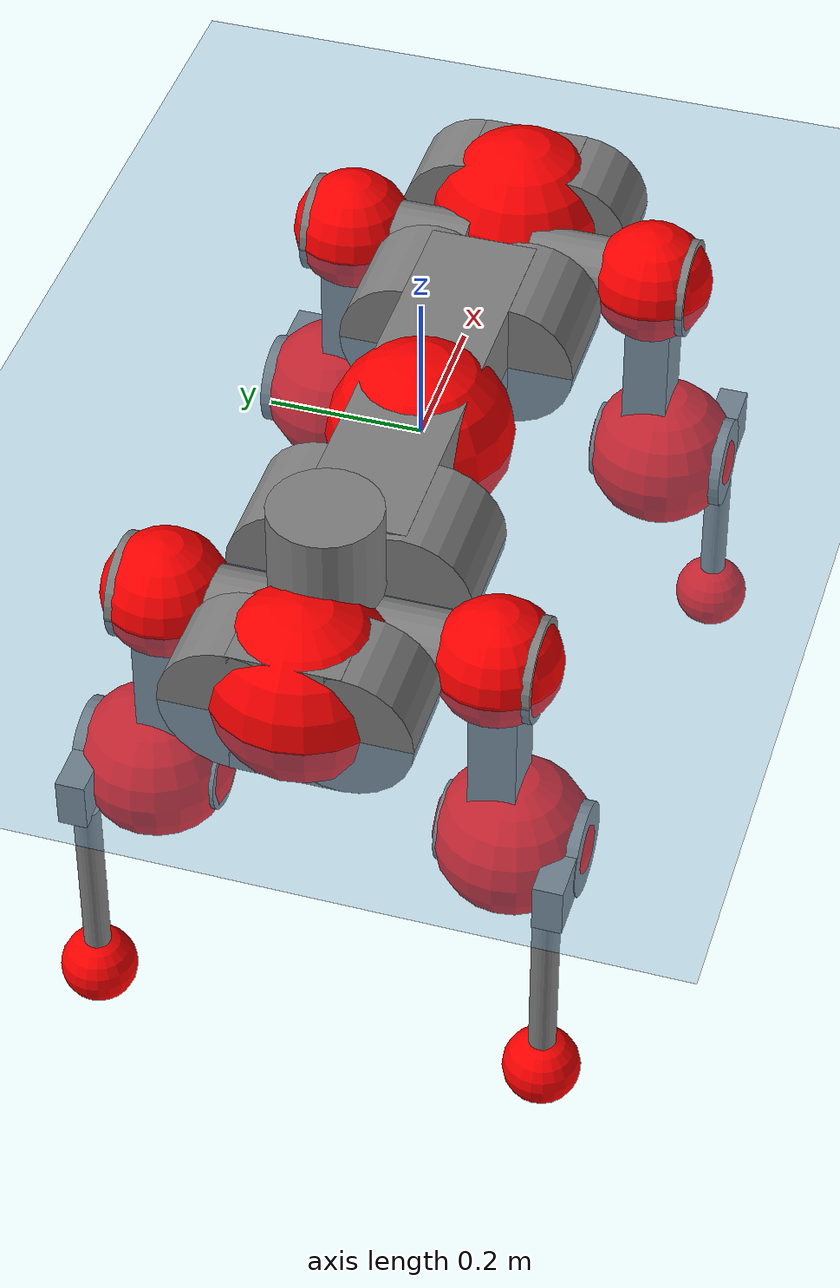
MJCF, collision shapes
<mujoco model="anymal_c">
  <compiler angle="radian" assetdir="assets" balanceinertia="true" inertiafromgeom="false"/>

  <option timestep="0.005" density="1.2" viscosity="2e-05"/>

  <size nkey="1"/>

  <visual>
    <quality shadowsize="8192"/>
    <map shadowclip="0.5"/>
  </visual>

  <default>
    <default class="/">
      <material specular="0" shininess="0.25"/>
      <geom contype="0" conaffinity="0" group="1" solref="-1000 -80"/>
      <site size="0.01 0.005 0.005" group="5"/>
      <general forcelimited="true" forcerange="-80 80" biastype="affine" gainprm="80" biasprm="0 -80 -2"/>
      <default class="anymal_c">
        <joint armature="0.01" damping="0.01" frictionloss="0.1"/>
        <default class="visual">
          <geom type="mesh" group="2"/>
          <default class="visual_zflip"/>
        </default>
        <default class="collision">
          <geom type="cylinder" group="3"/>
          <default class="foot">
            <geom size="0.03 0 0" type="sphere" condim="6" priority="1" friction="0.8 0.02 0.01" solimp="0.015 1 0.03"/>
          </default>
        </default>
      </default>
      <default class="reward_collision_sphere">
        <geom group="5" rgba="1 0 0 1"/>
      </default>
    </default>
  </default>

  <asset>
    <texture type="skybox" colorspace="auto" name="//unnamed_texture_0" builtin="gradient" rgb1="0.95 0.95 0.95" rgb2="0.95 0.95 0.95" width="100" height="600"/>
    <texture type="2d" colorspace="auto" name="texplane" builtin="checker" rgb1="0.345 0.575 0.748" rgb2="0.345 0.575 0.748" markrgb="1 1 1" width="512" height="512"/>
    <texture type="2d" colorspace="linear" name="base" file="base.png"/>
    <texture type="2d" colorspace="linear" name="top_shell" file="top_shell.png"/>
    <texture type="2d" colorspace="linear" name="bottom_shell" file="bottom_shell.png"/>
    <texture type="2d" colorspace="linear" name="remote" file="remote.png"/>
    <texture type="2d" colorspace="linear" name="hatch" file="hatch.png"/>
    <texture type="2d" colorspace="linear" name="handle" file="handle.png"/>
    <texture type="2d" colorspace="linear" name="face" file="face.png"/>
    <texture type="2d" colorspace="linear" name="battery" file="battery.png"/>
    <texture type="2d" colorspace="linear" name="lidar_cage" file="lidar_cage.png"/>
    <texture type="2d" colorspace="linear" name="depth_camera" file="depth_camera.png"/>
    <texture type="2d" colorspace="linear" name="wide_angle_camera" file="wide_angle_camera.png"/>
    <texture type="2d" colorspace="linear" name="lidar" file="lidar.png"/>
    <texture type="2d" colorspace="linear" name="drive" file="drive.png"/>
    <texture type="2d" colorspace="linear" name="hip_l" file="hip_l.png"/>
    <texture type="2d" colorspace="linear" name="shank_l" file="shank_l.png"/>
    <texture type="2d" colorspace="linear" name="foot" file="foot.png"/>
    <texture type="2d" colorspace="linear" name="thigh" file="thigh.png"/>
    <texture type="2d" colorspace="linear" name="shank_r" file="shank_r.png"/>
    <texture type="2d" colorspace="linear" name="hip_r" file="hip_r.png"/>
    <material name="MatPlane" class="/" texture="texplane" texuniform="true" texrepeat="2 2" specular="0.9" shininess="0.5"/>
    <material name="black_plastic" class="/" rgba="0.007 0.007 0.007 1"/>
    <material name="green" class="/" rgba="0.052 0.178 0.033 1"/>
    <material name="red" class="/" rgba="0.178 0.006 0.005 1"/>
    <material name="yellow" class="/" rgba="0.178 0.119 0.006 1"/>
    <material name="lwl" class="/" rgba="0.8 0.8 0.8 1"/>
    <material name="base" class="/" texture="base"/>
    <material name="top_shell" class="/" texture="top_shell"/>
    <material name="bottom_shell" class="/" texture="bottom_shell"/>
    <material name="hip_l" class="/" texture="hip_l"/>
    <material name="thigh" class="/" texture="thigh"/>
    <material name="shank_l" class="/" texture="shank_l"/>
    <material name="foot" class="/" texture="foot"/>
    <material name="hip_r" class="/" texture="hip_r"/>
    <material name="shank" class="/" texture="shank_r"/>
    <material name="hatch" class="/" texture="hatch"/>
    <material name="remote" class="/" texture="remote"/>
    <material name="handle" class="/" texture="handle"/>
    <material name="face" class="/" texture="face"/>
    <material name="depth_camera" class="/" texture="depth_camera"/>
    <material name="wide_angle_camera" class="/" texture="wide_angle_camera"/>
    <material name="battery" class="/" texture="battery"/>
    <material name="lidar_cage" class="/" texture="lidar_cage"/>
    <material name="lidar" class="/" texture="lidar"/>
    <material name="drive" class="/" texture="drive"/>
    <mesh name="base_0" class="/" file="base_0.obj"/>
    <mesh name="base_1" class="/" file="base_1.obj"/>
    <mesh name="base_2" class="/" file="base_2.obj"/>
    <mesh name="base_3" class="/" file="base_3.obj"/>
    <mesh name="base_4" class="/" file="base_4.obj"/>
    <mesh name="base_5" class="/" file="base_5.obj"/>
    <mesh name="top_shell" class="/" file="top_shell.obj"/>
    <mesh name="bottom_shell" class="/" file="bottom_shell.obj"/>
    <mesh name="remote" class="/" file="remote.obj"/>
    <mesh name="handle" class="/" file="handle.obj"/>
    <mesh name="face" class="/" file="face.obj"/>
    <mesh name="wide_angle_camera" class="/" file="wide_angle_camera.obj"/>
    <mesh name="depth_camera" class="/" file="depth_camera.obj"/>
    <mesh name="battery" class="/" file="battery.obj"/>
    <mesh name="lidar_cage" class="/" file="lidar_cage.obj"/>
    <mesh name="lidar" class="/" file="lidar.obj"/>
    <mesh name="drive" class="/" file="drive.obj"/>
    <mesh name="hip_l" class="/" file="hip_l.obj"/>
    <mesh name="thigh" class="/" file="thigh.obj"/>
    <mesh name="shank_l" class="/" file="shank_l.obj"/>
    <mesh name="foot" class="/" file="foot.obj"/>
    <mesh name="hip_r" class="/" file="hip_r.obj"/>
    <mesh name="hatch" class="/" file="hatch.obj"/>
    <mesh name="shank_r" class="/" file="shank_r.obj"/>
  </asset>

  <worldbody>
    <geom name="floor" class="/" size="100 100 0.125" type="plane" group="0" material="MatPlane"/>
    <light name="toplight_shadow" class="/" pos="0 0 5" dir="0.0990148 0.0990148 -0.990148" type="directional" ambient="0.04 0.04 0.04" diffuse="0.55 0.55 0.55" specular="0.12 0.12 0.12"/>
    <light name="toplight_fill" class="/" pos="0 0 5" dir="0.0990148 0.0990148 -0.990148" type="directional" castshadow="false" ambient="0.04 0.04 0.04" diffuse="0.3 0.3 0.3" specular="0.08 0.08 0.08"/>
    <body name="trunk" childclass="anymal_c" pos="-0.0014744 0.000329971 0.000834205" quat="1 0.000109133 -0.000105299 9.63104e-05">
      <inertial pos="0.000662361 -0.000545973 0.0493317" quat="0.50335 0.498855 0.49843 0.499349" mass="19.8149" diaginertia="0.854964 0.513293 0.236361"/>
      <joint name="//unnamed_joint_0" type="free" armature="0" damping="0" frictionloss="0"/>
      <geom name="//unnamed_geom_1" class="visual" material="green" mesh="base_0"/>
      <geom name="//unnamed_geom_2" class="visual" material="yellow" mesh="base_1"/>
      <geom name="//unnamed_geom_3" class="visual" material="red" mesh="base_2"/>
      <geom name="//unnamed_geom_4" class="visual" material="black_plastic" mesh="base_3"/>
      <geom name="//unnamed_geom_5" class="visual" material="lwl" mesh="base_4"/>
      <geom name="//unnamed_geom_6" class="visual" material="base" mesh="base_5"/>
      <geom name="trunk_1" class="collision" size="0.293204 0.0707733 0.0909942" type="box"/>
      <geom name="trunk_2" class="collision" size="0.0909942 0.0733009" pos="0.230173 0.0672509 0" quat="0.707107 0 0.707107 0"/>
      <geom name="trunk_3" class="collision" size="0.0909942 0.0733009" pos="-0.230173 0.0672509 0" quat="0.707107 0 0.707107 0"/>
      <geom name="trunk_4" class="collision" size="0.0909942 0.0733009" pos="0.230173 -0.0672509 0" quat="0.707107 0 0.707107 0"/>
      <geom name="trunk_5" class="collision" size="0.0909942 0.0733009" pos="-0.230173 -0.0672509 0" quat="0.707107 0 0.707107 0"/>
      <geom name="//unnamed_geom_12" class="visual" material="top_shell" mesh="top_shell"/>
      <geom name="//unnamed_geom_13" class="visual" material="bottom_shell" mesh="bottom_shell"/>
      <geom name="//unnamed_geom_14" class="visual" material="remote" mesh="remote"/>
      <geom name="//unnamed_geom_15" class="visual" material="handle" mesh="handle"/>
      <geom name="//unnamed_geom_16" class="visual" pos="0.438651 0 0" quat="1 0 0 0" material="face" mesh="face"/>
      <geom name="trunk_6" class="collision" size="0.0556076 0.0707733 0.0909942" pos="0.496855 0 0" type="box"/>
      <geom name="//unnamed_geom_18" class="collision" size="0.0909942 0.0556076" pos="0.496855 0.0672509 0" quat="0.707107 0 0.707107 0"/>
      <geom name="//unnamed_geom_19" class="collision" size="0.0909942 0.0556076" pos="0.496855 -0.0672509 0" quat="0.707107 0 0.707107 0"/>
      <geom name="//unnamed_geom_20" class="visual" pos="0.488546 0 -0.0292779" quat="0.965926 0 0.258819 0" material="depth_camera" mesh="depth_camera"/>
      <geom name="//unnamed_geom_21" class="visual" pos="0.54289 0 0.0151818" material="wide_angle_camera" mesh="wide_angle_camera"/>
      <geom name="//unnamed_geom_22" class="visual_zflip" pos="-0.438651 0 0" quat="0 0 0 1" material="face" mesh="face"/>
      <geom name="trunk_7" class="collision" size="0.0556076 0.0707733 0.0909942" pos="-0.496855 0 0" quat="0 0 0 1" type="box"/>
      <geom name="//unnamed_geom_24" class="collision" size="0.0909942 0.0556076" pos="-0.496855 -0.0672509 0" quat="0 -0.707107 0 0.707107"/>
      <geom name="//unnamed_geom_25" class="collision" size="0.0909942 0.0556076" pos="-0.496855 0.0672509 0" quat="0 -0.707107 0 0.707107"/>
      <geom name="//unnamed_geom_26" class="visual" pos="-0.488546 0 -0.0292779" quat="0 -0.258819 0 0.965926" material="depth_camera" mesh="depth_camera"/>
      <geom name="//unnamed_geom_27" class="visual_zflip" pos="-0.54289 0 0.0151818" quat="0 0 0 1" material="wide_angle_camera" mesh="wide_angle_camera"/>
      <geom name="//unnamed_geom_28" class="visual" material="battery" mesh="battery"/>
      <geom name="//unnamed_geom_29" class="visual" pos="0 0.0721755 0.0297963" quat="0.683013 -0.183013 0.183013 0.683013" material="depth_camera" mesh="depth_camera"/>
      <geom name="//unnamed_geom_30" class="visual" pos="0 -0.0721755 0.0297963" quat="0.683013 0.183013 0.183013 -0.683013" material="depth_camera" mesh="depth_camera"/>
      <geom name="//unnamed_geom_31" class="visual" pos="-0.385208 0 0.07454" quat="1 0 0 0" material="lidar_cage" mesh="lidar_cage"/>
      <geom name="trunk_8" class="collision" size="0.0707733 0.0606628" pos="-0.385208 0 0.135389"/>
      <geom name="//unnamed_geom_33" class="visual" pos="-0.385208 -3.83197e-05 0.144212" quat="0.707107 0 0 -0.707107" material="lidar" mesh="lidar"/>
      <geom name="//unnamed_geom_34" class="visual" pos="0.317374 0.0999346 -9.21533e-10" quat="0.258819 0.965926 0 0" material="drive" mesh="drive"/>
      <geom name="//unnamed_geom_35" class="visual" pos="0.317374 -0.0999346 9.21533e-10" quat="0.258819 -0.965926 0 0" material="drive" mesh="drive"/>
      <geom name="//unnamed_geom_36" class="visual" pos="-0.317374 0.0999346 9.21533e-10" quat="0 0 0.965926 -0.258819" material="drive" mesh="drive"/>
      <geom name="//unnamed_geom_37" class="visual" pos="-0.317374 -0.0999346 -9.21533e-10" quat="0 0 -0.965926 -0.258819" material="drive" mesh="drive"/>
      <geom name="//unnamed_geom_38" class="visual" pos="0.122759 0 0.0740329" quat="1 0 0 0" material="hatch" mesh="hatch"/>
      <geom name="//unnamed_geom_39" class="reward_collision_sphere" size="0.121326"/>
      <geom name="//unnamed_geom_40" class="reward_collision_sphere" size="0.121326" pos="0.476219 0 0"/>
      <geom name="//unnamed_geom_41" class="reward_collision_sphere" size="0.121326" pos="-0.476219 0 0"/>
      <site name="imu" pos="0.26171 0.00441792 0.0477434" size="0.0101105"/>
      <camera name="track" pos="0 -1.92145 0" quat="0.707107 0.707107 0 0" mode="trackcom"/>
      <camera name="ego_camera" pos="0.476219 0 -0.040566" quat="-0.5 -0.5 0.5 0.5"/>
      <body name="LF_HIP" pos="0.318658 0.101061 -0.0014124" quat="0.258791 0.965933 -0.00046364 -0.000614992">
        <inertial pos="0.0582816 -0.0134534 -0.00736402" quat="-0.127427 0.709912 -0.134562 0.679471" mass="2.88396" diaginertia="0.00780058 0.00400303 0.00352423"/>
        <joint name="LF_HAA" pos="0 0 0" axis="0.999995 -0.00136771 -0.00285856" range="-0.717996 0.47363" armature="0.0101519" damping="0.0130533" frictionloss="0.0964468"/>
        <geom name="//unnamed_geom_42" class="visual" pos="0 -5.42096e-05 8.90389e-06" quat="0.258819 -0.965926 0 0" material="hip_l" mesh="hip_l"/>
        <geom name="//unnamed_geom_43" class="visual" pos="0.06339 -0.0755453 -0.0440112" quat="0.183013 -0.683013 0.683013 0.183013" material="drive" mesh="drive"/>
        <geom name="//unnamed_geom_44" class="collision" size="0.0505524 0.0707733" pos="0.06339 -0.0114901 -0.0070027" quat="-0.353553 -0.612372 0.612372 -0.353553"/>
        <body name="LF_THIGH" pos="0.063213 -0.069948 -0.0427341" quat="0.183025 -0.683011 0.683017 0.182991">
          <inertial pos="0.0343359 -0.00012796 -0.248122" quat="0.993166 -0.00515407 -0.0806621 0.0841889" mass="3.18221" diaginertia="0.0401328 0.024495 0.00454647"/>
          <joint name="LF_HFE" pos="0 0 0" axis="0.999994 -0.00124717 0.00328172" stiffness="0.0100779" range="-3.15364 3.13831" armature="0.0100762" damping="0" frictionloss="0.0961734"/>
          <geom name="//unnamed_geom_45" class="visual" pos="0.0019406 3.05793e-06 0" quat="0.707107 0 0 -0.707107" material="thigh" mesh="thigh"/>
          <geom name="//unnamed_geom_46" class="collision" size="0.0657181 0.0404419" pos="0.0423306 0 0" quat="0.5 0.5 -0.5 -0.5"/>
          <geom name="//unnamed_geom_47" class="collision" size="0.0379143 0.0303314 0.142875" pos="0.0317479 0 -0.143314" quat="0.707107 0 0 -0.707107" type="box"/>
          <geom name="//unnamed_geom_48" class="visual" pos="0.106144 0 -0.289033" quat="1 0 0 0" material="drive" mesh="drive"/>
          <geom name="//unnamed_geom_49" class="collision" size="0.0505524 0.0707733" pos="0.0320654 0 -0.289033" quat="0.707107 0 0.707107 0"/>
          <geom name="//unnamed_geom_50" class="reward_collision_sphere" size="0.0808838" pos="0.0264566 0 0"/>
          <body name="LF_SHANK" pos="0.10648 -5.79253e-05 -0.289756" quat="1 -0.000231364 -0.000259153 6.60053e-05">
            <inertial pos="0.00497837 -0.0597572 -0.0817916" quat="0.992532 -0.119541 -0.00296929 -0.024112" mass="0.606678" diaginertia="0.0135846 0.0074726 0.00120914"/>
            <joint name="LF_KFE" pos="0 0 0" axis="0.999996 -0.00268215 0.000485256" range="-3.14372 3.12754" armature="0.0106371" damping="0.00960458" frictionloss="0.0984274"/>
            <geom name="//unnamed_geom_51" class="visual" pos="0.000632788 0.00337406 0" quat="0.707107 0 0 -0.707107" material="shank_l" mesh="shank_l"/>
            <geom name="LF_kfe_act" class="collision" size="0.0606628 0.0202209" pos="0.0211653 0 0" quat="0.5 0.5 -0.5 -0.5"/>
            <geom name="//unnamed_geom_53" class="collision" size="0.0581342 0.0341228 0.0192099" pos="0.0211653 -0.0552409 0" quat="0.5 0.5 -0.5 -0.5" type="box"/>
            <geom name="//unnamed_geom_54" class="visual" pos="0.0138102 -0.0834087 -0.342752" quat="0.382683 0 0 -0.92388" material="foot" mesh="foot"/>
            <geom name="LF_calf" class="collision" size="0.0176933 0.142812" pos="0.0138104 -0.084496 -0.171376" quat="0.707107 0 0 -0.707107"/>
            <geom name="LF_foot" class="foot" size="0.0290481" pos="0.0138104 -0.084496 -0.319934" quat="0.707107 0 0 -0.707107"/>
            <geom name="//unnamed_geom_57" class="reward_collision_sphere" size="0.101105" pos="-0.0529132 0 0"/>
            <geom name="//unnamed_geom_58" class="reward_collision_sphere" size="0.0505524" pos="0.0138104 -0.084496 -0.319934"/>
            <site name="LF_foot" class="foot" pos="0.0138104 -0.084496 -0.319934" quat="0.707107 0 0 -0.707107" size="0.0101105"/>
          </body>
        </body>
      </body>
      <body name="RF_HIP" pos="0.317829 -0.0996265 0.00039455" quat="0.258664 -0.965967 0.000359968 -3.11233e-05">
        <inertial pos="0.0604 0.0146118 -0.00852419" quat="0.135339 0.679361 0.126728 0.709994" mass="2.93458" diaginertia="0.00768953 0.00399566 0.00354253"/>
        <joint name="RF_HAA" pos="0 0 0" axis="0.999999 0.00114191 -0.000993396" range="-0.510611 0.717195" armature="0.0092757" damping="0.0100136" frictionloss="0.108911"/>
        <geom name="//unnamed_geom_59" class="visual" pos="0 5.42092e-05 8.90386e-06" quat="0.258819 0.965926 0 0" material="hip_r" mesh="hip_r"/>
        <geom name="//unnamed_geom_60" class="visual" pos="0.06339 0.0755453 -0.0440112" quat="0.183013 0.683013 0.683013 -0.183013" material="drive" mesh="drive"/>
        <geom name="//unnamed_geom_61" class="collision" size="0.0505524 0.0707733" pos="0.06339 0.0114901 -0.0070027" quat="-0.353553 0.612372 0.612372 0.353553"/>
        <body name="RF_THIGH" pos="0.0642673 0.0695614 -0.0424186" quat="0.183406 0.683109 0.682749 -0.183243">
          <inertial pos="0.0329347 -0.00177667 -0.248706" quat="0.992656 -0.00472884 -0.0830988 0.0877856" mass="3.12916" diaginertia="0.0406001 0.0249785 0.00451157"/>
          <joint name="RF_HFE" pos="0 0 0" axis="0.999988 -0.00337544 -0.00367027" stiffness="0.00402742" range="-3.13389 3.15228" armature="0.0101308" damping="0.00969124" frictionloss="0.0964058"/>
          <geom name="//unnamed_geom_62" class="visual" pos="0.0019406 3.05793e-06 0" quat="0.707107 0 0 -0.707107" material="thigh" mesh="thigh"/>
          <geom name="//unnamed_geom_63" class="collision" size="0.0657181 0.0404419" pos="0.0423306 0 0" quat="0.5 0.5 0.5 0.5"/>
          <geom name="//unnamed_geom_64" class="collision" size="0.0379143 0.0303314 0.142875" pos="0.0317479 0 -0.143314" quat="0.707107 0 0 0.707107" type="box"/>
          <geom name="//unnamed_geom_65" class="visual" pos="0.106144 0 -0.289033" quat="1 0 0 0" material="drive" mesh="drive"/>
          <geom name="//unnamed_geom_66" class="collision" size="0.0505524 0.0707733" pos="0.0320654 0 -0.289033" quat="0.707107 0 0.707107 0"/>
          <geom name="//unnamed_geom_67" class="reward_collision_sphere" size="0.0808838" pos="0.0264566 0 0"/>
          <body name="RF_SHANK" pos="0.105178 -3.14472e-05 -0.289018" quat="1 3.2235e-05 7.48593e-05 5.76163e-05">
            <inertial pos="0.00501901 0.0590194 -0.0814936" quat="0.993075 0.115127 -0.00238082 0.0233021" mass="0.610706" diaginertia="0.0136784 0.00762333 0.00120342"/>
            <joint name="RF_KFE" pos="0 0 0" axis="0.99998 -0.00040401 -0.00626075" range="-3.1432 3.12857" armature="0.0101064" damping="0.00432107" frictionloss="0.101087"/>
            <geom name="//unnamed_geom_68" class="visual" pos="0.000632784 -0.00337405 0" quat="0.707107 0 0 0.707107" material="shank" mesh="shank_r"/>
            <geom name="RF_kfe_act" class="collision" size="0.0606628 0.0202209" pos="0.0211653 0 0" quat="0.5 0.5 0.5 0.5"/>
            <geom name="//unnamed_geom_70" class="collision" size="0.0581342 0.0341228 0.0192099" pos="0.0211653 0.0552409 0" quat="0.5 0.5 0.5 0.5" type="box"/>
            <geom name="//unnamed_geom_71" class="visual" pos="0.0138105 0.0834087 -0.342752" quat="0.382683 0 0 0.92388" material="foot" mesh="foot"/>
            <geom name="RF_calf" class="collision" size="0.0176933 0.142812" pos="0.0138104 0.084496 -0.171376" quat="0.707107 0 0 0.707107"/>
            <geom name="RF_foot" class="foot" size="0.0300583" pos="0.0138104 0.084496 -0.319934" quat="0.707107 0 0 0.707107"/>
            <geom name="//unnamed_geom_74" class="reward_collision_sphere" size="0.101105" pos="-0.0529132 0 0"/>
            <geom name="//unnamed_geom_75" class="reward_collision_sphere" size="0.0505524" pos="0.0138104 0.084496 -0.319934"/>
            <site name="RF_foot" class="foot" pos="0.0138104 0.084496 -0.319934" quat="0.707107 0 0 0.707107" size="0.0101105"/>
          </body>
        </body>
      </body>
      <body name="LH_HIP" pos="-0.317346 0.0999753 -0.000201052" quat="-0.000746179 -7.59476e-05 0.965726 -0.259561">
        <inertial pos="0.0616302 0.0143129 -0.00818509" quat="0.135212 0.678965 0.127664 0.71023" mass="2.87238" diaginertia="0.00775937 0.00400827 0.00352159"/>
        <joint name="LH_HAA" pos="0 0 0" axis="0.999999 4.17326e-05 0.00112503" range="-0.501533 0.733281" armature="0.0100414" damping="0.0100809" frictionloss="0.0970757"/>
        <geom name="//unnamed_geom_76" class="visual" pos="0 5.42092e-05 8.90386e-06" quat="-0.258819 -0.965926 0 0" material="hip_r" mesh="hip_r"/>
        <geom name="//unnamed_geom_77" class="visual" pos="0.06339 0.0755453 -0.0440112" quat="0.183013 0.683013 0.683013 -0.183013" material="drive" mesh="drive"/>
        <geom name="//unnamed_geom_78" class="collision" size="0.0505524 0.0707733" pos="0.06339 0.0114901 -0.0070027" quat="-0.353553 0.612372 0.612372 0.353553"/>
        <body name="LH_THIGH" pos="0.061279 0.0686812 -0.0430208" quat="0.183298 0.683176 0.682776 -0.183">
          <inertial pos="0.0328105 -0.000533756 -0.249482" quat="0.992516 -0.00740521 -0.0840493 0.0882802" mass="3.15047" diaginertia="0.0400178 0.0244068 0.00445641"/>
          <joint name="LH_HFE" pos="0 0 0" axis="1 -0.000292884 0.000353638" stiffness="0.000245958" range="-3.15246 3.14071" armature="0.0103312" damping="0.000645715" frictionloss="0.104466"/>
          <geom name="//unnamed_geom_79" class="visual" pos="0.0019406 3.05793e-06 0" quat="0.707107 0 0 -0.707107" material="thigh" mesh="thigh"/>
          <geom name="//unnamed_geom_80" class="collision" size="0.0657181 0.0404419" pos="0.0423306 0 0" quat="0.5 0.5 -0.5 -0.5"/>
          <geom name="//unnamed_geom_81" class="collision" size="0.0379143 0.0303314 0.142875" pos="0.0317479 0 -0.143314" quat="0.707107 0 0 -0.707107" type="box"/>
          <geom name="//unnamed_geom_82" class="visual" pos="0.106144 0 -0.289033" quat="1 0 0 0" material="drive" mesh="drive"/>
          <geom name="//unnamed_geom_83" class="collision" size="0.0505524 0.0707733" pos="0.0320654 0 -0.289033" quat="0.707107 0 0.707107 0"/>
          <geom name="//unnamed_geom_84" class="reward_collision_sphere" size="0.0808838" pos="0.0264566 0 0"/>
          <body name="LH_SHANK" pos="0.105234 -5.44768e-05 -0.289982" quat="1 3.89048e-06 5.80087e-06 2.94542e-05">
            <inertial pos="0.00571698 0.0588658 -0.082657" quat="0.99286 0.116555 -0.000607964 0.0253716" mass="0.610937" diaginertia="0.0134932 0.00754964 0.00120603"/>
            <joint name="LH_KFE" pos="0 0 0" axis="0.999998 -0.00196225 -0.000616202" range="-3.14016 3.14028" armature="0.0104511" damping="0.000830151" frictionloss="0.102654"/>
            <geom name="//unnamed_geom_85" class="visual" pos="0.000632784 -0.00337405 0" quat="-0.707107 0 0 -0.707107" material="shank" mesh="shank_r"/>
            <geom name="LH_kfe_act" class="collision" size="0.0606628 0.0202209" pos="0.0211653 0 0" quat="0.5 0.5 -0.5 -0.5"/>
            <geom name="//unnamed_geom_87" class="collision" size="0.0581342 0.0341228 0.0192099" pos="0.0211653 0.0552409 0" quat="0.5 0.5 -0.5 -0.5" type="box"/>
            <geom name="//unnamed_geom_88" class="visual" pos="0.0138105 0.0834087 -0.342752" quat="-0.382683 0 0 -0.92388" material="foot" mesh="foot"/>
            <geom name="LH_calf" class="collision" size="0.0176933 0.142812" pos="0.0138104 0.084496 -0.171376" quat="0.707107 0 0 -0.707107"/>
            <geom name="LH_foot" class="foot" size="0.0309946" pos="0.0138104 0.084496 -0.319934" quat="0.707107 0 0 -0.707107"/>
            <geom name="//unnamed_geom_91" class="reward_collision_sphere" size="0.101105" pos="-0.0529132 0 0"/>
            <geom name="//unnamed_geom_92" class="reward_collision_sphere" size="0.0505524" pos="0.0138104 0.084496 -0.319934"/>
            <site name="LH_foot" class="foot" pos="0.0138104 0.084496 -0.319934" quat="0.707107 0 0 -0.707107" size="0.0101105"/>
          </body>
        </body>
      </body>
      <body name="RH_HIP" pos="-0.317238 -0.101532 0.000710159" quat="4.44078e-05 -0.00012881 -0.965932 -0.258797">
        <inertial pos="0.0599111 -0.0145916 -0.00851163" quat="-0.132495 0.707852 -0.133704 0.680818" mass="2.88031" diaginertia="0.00771185 0.0040026 0.00357738"/>
        <joint name="RH_HAA" pos="0 0 0" axis="0.999999 -0.00113265 -0.0007665" range="-0.712979 0.492964" armature="0.0108567" damping="0.0202271" frictionloss="0.0972351"/>
        <geom name="//unnamed_geom_93" class="visual" pos="0 -5.42096e-05 8.90389e-06" quat="-0.258819 0.965926 0 0" material="hip_l" mesh="hip_l"/>
        <geom name="//unnamed_geom_94" class="visual" pos="0.06339 -0.0755453 -0.0440112" quat="-0.183013 0.683013 -0.683013 -0.183013" material="drive" mesh="drive"/>
        <geom name="//unnamed_geom_95" class="collision" size="0.0505524 0.0707733" pos="0.06339 -0.0114901 -0.0070027" quat="0.353553 0.612372 -0.612372 0.353553"/>
        <body name="RH_THIGH" pos="0.0636242 -0.0698865 -0.0433962" quat="-0.182797 0.68325 -0.682887 -0.182812">
          <inertial pos="0.0327818 0.000942847 -0.249076" quat="0.993063 -0.0051156 -0.0809019 0.0851708" mass="3.24339" diaginertia="0.0409949 0.0246322 0.00447148"/>
          <joint name="RH_HFE" pos="0 0 0" axis="0.999995 0.000753155 0.00299019" range="-3.16211 3.13076" armature="0.00962054" damping="0.00680958" frictionloss="0.101634"/>
          <geom name="//unnamed_geom_96" class="visual" pos="0.0019406 3.05793e-06 0" quat="0.707107 0 0 -0.707107" material="thigh" mesh="thigh"/>
          <geom name="//unnamed_geom_97" class="collision" size="0.0657181 0.0404419" pos="0.0423306 0 0" quat="0.5 0.5 0.5 0.5"/>
          <geom name="//unnamed_geom_98" class="collision" size="0.0379143 0.0303314 0.142875" pos="0.0317479 0 -0.143314" quat="0.707107 0 0 0.707107" type="box"/>
          <geom name="//unnamed_geom_99" class="visual" pos="0.106144 0 -0.289033" quat="1 0 0 0" material="drive" mesh="drive"/>
          <geom name="//unnamed_geom_100" class="collision" size="0.0505524 0.0707733" pos="0.0320654 0 -0.289033" quat="0.707107 0 0.707107 0"/>
          <geom name="//unnamed_geom_101" class="reward_collision_sphere" size="0.0808838" pos="0.0264566 0 0"/>
          <body name="RH_SHANK" pos="0.103744 0.000182034 -0.288694" quat="1 -5.31644e-05 -2.83916e-05 3.1833e-05">
            <inertial pos="0.00776623 -0.0588078 -0.0827431" quat="0.992701 -0.118521 -0.000254543 -0.0223097" mass="0.609133" diaginertia="0.0130685 0.00742662 0.00116925"/>
            <joint name="RH_KFE" pos="0 0 0" axis="0.999994 0.00246525 0.002495" range="-3.12378 3.1738" armature="0.0100289" damping="0.0111837" frictionloss="0.100139"/>
            <geom name="//unnamed_geom_102" class="visual" pos="0.000632788 0.00337406 0" quat="0.707107 0 0 -0.707107" material="shank_l" mesh="shank_l"/>
            <geom name="RH_kfe_act" class="collision" size="0.0606628 0.0202209" pos="0.0211653 0 0" quat="0.5 0.5 0.5 0.5"/>
            <geom name="//unnamed_geom_104" class="collision" size="0.0581342 0.0341228 0.0192099" pos="0.0211653 -0.0552409 0" quat="0.5 0.5 0.5 0.5" type="box"/>
            <geom name="//unnamed_geom_105" class="visual" pos="0.0138102 -0.0834087 -0.342752" quat="0.382683 0 0 -0.92388" material="foot" mesh="foot"/>
            <geom name="RH_calf" class="collision" size="0.0176933 0.142812" pos="0.0138104 -0.084496 -0.171376" quat="0.707107 0 0 0.707107"/>
            <geom name="RH_foot" class="foot" size="0.0285982" pos="0.0138104 -0.084496 -0.319934" quat="0.707107 0 0 0.707107"/>
            <geom name="//unnamed_geom_108" class="reward_collision_sphere" size="0.101105" pos="-0.0529132 0 0"/>
            <geom name="//unnamed_geom_109" class="reward_collision_sphere" size="0.0505524" pos="0.0138104 -0.084496 -0.319934"/>
            <site name="RH_foot" class="foot" pos="0.0138104 -0.084496 -0.319934" quat="0.707107 0 0 0.707107" size="0.0101105"/>
          </body>
        </body>
      </body>
    </body>
  </worldbody>

  <contact>
    <pair class="/" geom1="floor" geom2="LF_foot" name="//unnamed_contact_0"/>
    <pair class="/" geom1="floor" geom2="RF_foot" name="//unnamed_contact_1"/>
    <pair class="/" geom1="floor" geom2="LH_foot" name="//unnamed_contact_2"/>
    <pair class="/" geom1="floor" geom2="RH_foot" name="//unnamed_contact_3"/>
  </contact>

  <actuator>
    <general name="LF_HAA" class="/" joint="LF_HAA" forcerange="-81.8825 81.8825" gainprm="81.5717" biasprm="0 -81.5717 -1.9179"/>
    <general name="LF_HFE" class="/" joint="LF_HFE" forcerange="-83.8414 83.8414" gainprm="81.5717" biasprm="0 -81.5717 -1.9179"/>
    <general name="LF_KFE" class="/" joint="LF_KFE" forcerange="-80.5201 80.5201" gainprm="81.5717" biasprm="0 -81.5717 -1.9179"/>
    <general name="RF_HAA" class="/" joint="RF_HAA" forcerange="-87.3253 87.3253" gainprm="81.5717" biasprm="0 -81.5717 -1.9179"/>
    <general name="RF_HFE" class="/" joint="RF_HFE" forcerange="-82.5939 82.5939" gainprm="81.5717" biasprm="0 -81.5717 -1.9179"/>
    <general name="RF_KFE" class="/" joint="RF_KFE" forcerange="-81.4353 81.4353" gainprm="81.5717" biasprm="0 -81.5717 -1.9179"/>
    <general name="LH_HAA" class="/" joint="LH_HAA" forcerange="-81.2155 81.2155" gainprm="81.5717" biasprm="0 -81.5717 -1.9179"/>
    <general name="LH_HFE" class="/" joint="LH_HFE" forcerange="-80.8113 80.8113" gainprm="81.5717" biasprm="0 -81.5717 -1.9179"/>
    <general name="LH_KFE" class="/" joint="LH_KFE" forcerange="-82.2842 82.2842" gainprm="81.5717" biasprm="0 -81.5717 -1.9179"/>
    <general name="RH_HAA" class="/" joint="RH_HAA" forcerange="-83.0644 83.0644" gainprm="81.5717" biasprm="0 -81.5717 -1.9179"/>
    <general name="RH_HFE" class="/" joint="RH_HFE" forcerange="-82.0305 82.0305" gainprm="81.5717" biasprm="0 -81.5717 -1.9179"/>
    <general name="RH_KFE" class="/" joint="RH_KFE" forcerange="-84.5199 84.5199" gainprm="81.5717" biasprm="0 -81.5717 -1.9179"/>
  </actuator>

  <sensor>
    <gyro site="imu" name="imu_angular_velocity"/>
    <velocimeter site="imu" name="imu_linear_velocity"/>
    <framelinvel objtype="site" objname="LF_foot" name="LF_foot_global_linear_velocity"/>
    <framelinvel objtype="site" objname="RF_foot" name="RF_foot_global_linear_velocity"/>
    <framelinvel objtype="site" objname="LH_foot" name="LH_foot_global_linear_velocity"/>
    <framelinvel objtype="site" objname="RH_foot" name="RH_foot_global_linear_velocity"/>
  </sensor>

  <keyframe>
    <key name="home" qpos="0 0 0.55 1 0 0 0 0 0.4 -0.8 0 -0.4 0.8 0 -0.4 0.8 0 0.4 -0.8"/>
  </keyframe>
</mujoco>
